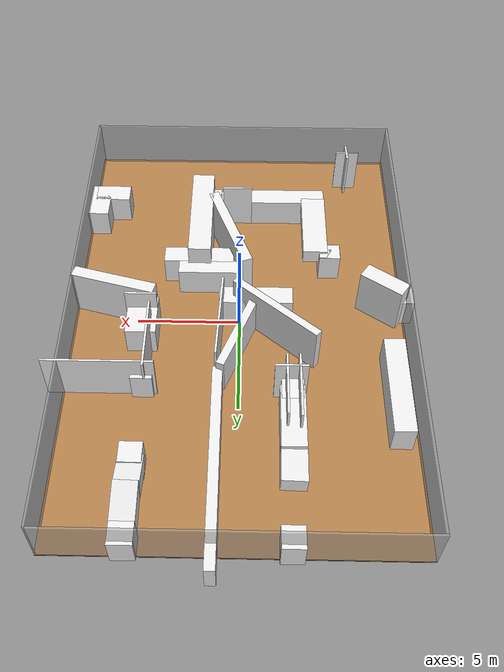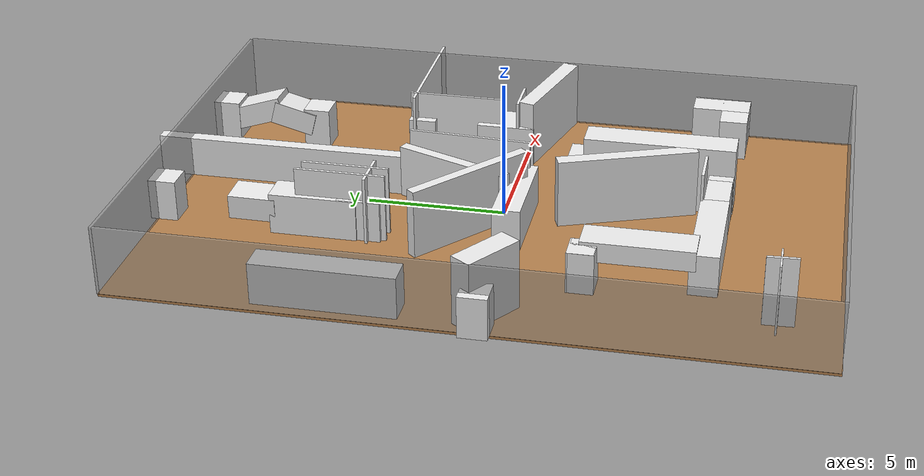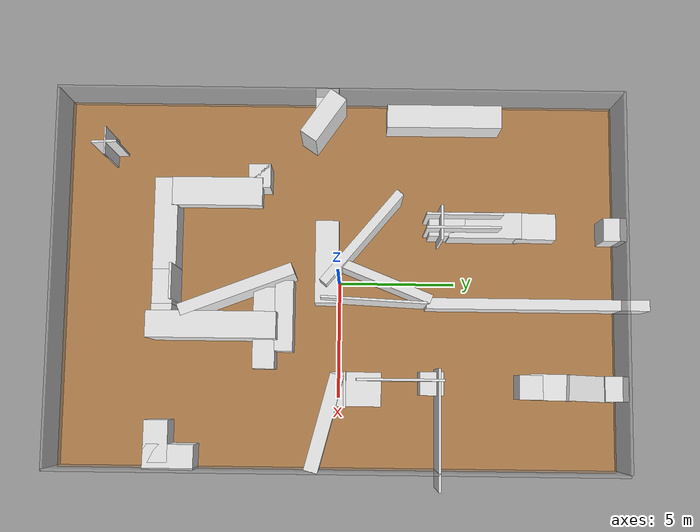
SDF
<sdf version="1.7">
 <world name="default">
  <light name="sun" type="directional">
   <pose>0 0 10 0 -0 0</pose>
   <diffuse>0.8 0.8 0.8 1</diffuse>
   <specular>0.2 0.2 0.2 1</specular>
   <attenuation>
    <range>1000</range>
    <constant>0.9</constant>
    <linear>0.01</linear>
    <quadratic>0.001</quadratic>
   </attenuation>
   <direction>-0.5 0.1 -0.9</direction>
   <spot><inner_angle>0</inner_angle><outer_angle>0</outer_angle><falloff>0</falloff></spot>
  </light>
  <physics name="default_physics" default="0" type="ode">
   <real_time_update_rate>1000</real_time_update_rate>
   <max_step_size>0.001</max_step_size>
   <real_time_factor>1</real_time_factor>
   <ode>
    <solver>
     <type>quick</type>
     <iters>150</iters>
     <precon_iters>0</precon_iters>
     <sor>1.4</sor>
     <use_dynamic_moi_rescaling>1</use_dynamic_moi_rescaling>
    </solver>
    <constraints>
     <cfm>1e-05</cfm>
     <erp>0.2</erp>
     <contact_max_correcting_vel>2000</contact_max_correcting_vel>
     <contact_surface_layer>0.01</contact_surface_layer>
    </constraints>
   </ode>
  </physics>
  <model name="box_1">
   <pose>0.05 -12.05 1.25 0 -0 0</pose>
   <static>1</static>
   <link name="link">
    <collision name="collision"><geometry><box><size>16.1 0.1 2.5</size></box></geometry></collision>
    <visual name="visual">
     <geometry><box><size>16.1 0.1 2.5</size></box></geometry>
     <material>
      <script><name>Gazebo/GreyTransparent</name><uri>file://media/materials/scripts/gazebo.material</uri></script>
     </material>
    </visual>
   </link>
  </model>
  <model name="box_2">
   <pose>8.06174 -0.026302 1.25 0 -0 0</pose>
   <static>1</static>
   <link name="link">
    <collision name="collision"><geometry><box><size>0.1 24.1 2.5</size></box></geometry></collision>
    <visual name="visual">
     <geometry><box><size>0.1 24.1 2.5</size></box></geometry>
     <material>
      <script><name>Gazebo/GreyTransparent</name><uri>file://media/materials/scripts/gazebo.material</uri></script>
     </material>
    </visual>
   </link>
  </model>
  <model name="box_3">
   <pose>-0.05 12.05 1.25 0 -0 0</pose>
   <static>1</static>
   <link name="link">
    <collision name="collision"><geometry><box><size>16.1 0.1 2.5</size></box></geometry></collision>
    <visual name="visual">
     <geometry><box><size>16.1 0.1 2.5</size></box></geometry>
     <material>
      <script><name>Gazebo/GreyTransparent</name><uri>file://media/materials/scripts/gazebo.material</uri></script>
     </material>
    </visual>
   </link>
  </model>
  <model name="box_4">
   <pose>-8.05 -0.05 1.25 0 -0 0</pose>
   <static>1</static>
   <link name="link">
    <collision name="collision"><geometry><box><size>0.1 24.1 2.5</size></box></geometry></collision>
    <visual name="visual">
     <geometry><box><size>0.1 24.1 2.5</size></box></geometry>
     <material>
      <script><name>Gazebo/GreyTransparent</name><uri>file://media/materials/scripts/gazebo.material</uri></script>
     </material>
    </visual>
   </link>
  </model>
  <model name="box_5">
   <pose>0.008855 -0.029843 -0.05 0 -0 0</pose>
   <static>1</static>
   <link name="link">
    <collision name="collision"><geometry><box><size>16.2 24.2 0.1</size></box></geometry></collision>
    <visual name="visual">
     <geometry><box><size>16.2 24.2 0.1</size></box></geometry>
     <material>
      <script><name>Gazebo/WoodFloor</name><uri>file://media/materials/scripts/gazebo.material</uri></script>
     </material>
    </visual>
   </link>
  </model>
  <gravity>0 0 -9.8066</gravity>
  <magnetic_field>6e-06 2.3e-05 -4.2e-05</magnetic_field>
  <atmosphere type="adiabatic"/>
  <scene><ambient>0.4 0.4 0.4 1</ambient><background>0.7 0.7 0.7 1</background><shadows>1</shadows></scene>
  <spherical_coordinates>
   <surface_model>EARTH_WGS84</surface_model>
   <latitude_deg>0</latitude_deg>
   <longitude_deg>0</longitude_deg>
   <elevation>0</elevation>
   <heading_deg>0</heading_deg>
  </spherical_coordinates>
  <model name="box_8_clone">
   <pose>6.02739 -0.558796 1.25 0 0 -0.258215</pose>
   <static>1</static>
   <link name="link">
    <collision name="collision"><geometry><box><size>4.10708 0.587966 2.5</size></box></geometry></collision>
    <visual name="visual">
     <geometry><box><size>4.10708 0.587966 2.5</size></box></geometry>
     <material>
      <script><name>Gazebo/White</name><uri>file://media/materials/scripts/gazebo.material</uri></script>
     </material>
    </visual>
   </link>
  </model>
  <model name="box_9_clone_clone_0">
   <pose>-2.3742 -7.50278 0.75 0 -0 0</pose>
   <static>1</static>
   <link name="link">
    <collision name="collision"><geometry><box><size>3.97916 1 1.5</size></box></geometry></collision>
    <visual name="visual">
     <geometry><box><size>3.97916 1 1.5</size></box></geometry>
     <material>
      <script><name>Gazebo/White</name><uri>file://media/materials/scripts/gazebo.material</uri></script>
     </material>
    </visual>
   </link>
  </model>
  <model name="box_9_clone_clone_1">
   <pose>0.352261 -7.55684 0.75 0 -0 0</pose>
   <static>1</static>
   <link name="link">
    <collision name="collision"><geometry><box><size>1.50562 0.874618 1.5</size></box></geometry></collision>
    <visual name="visual">
     <geometry><box><size>1.50562 0.874618 1.5</size></box></geometry>
     <material>
      <script><name>Gazebo/White</name><uri>file://media/materials/scripts/gazebo.material</uri></script>
     </material>
    </visual>
   </link>
  </model>
  <model name="box_9_clone_clone_2">
   <pose>-4.48641 -3.49037 0.75 0 -0 0</pose>
   <static>1</static>
   <link name="link">
    <collision name="collision"><geometry><box><size>1.032 0.920712 1.5</size></box></geometry></collision>
    <visual name="visual">
     <geometry><box><size>1.032 0.920712 1.5</size></box></geometry>
     <material>
      <script><name>Gazebo/White</name><uri>file://media/materials/scripts/gazebo.material</uri></script>
     </material>
    </visual>
   </link>
  </model>
  <model name="box_9_clone_clone_3">
   <pose>6.89538 -7.6391 0.75 0 0 -1.57247</pose>
   <static>1</static>
   <link name="link">
    <collision name="collision"><geometry><box><size>1.02796 1.76303 1.5</size></box></geometry></collision>
    <visual name="visual">
     <geometry><box><size>1.02796 1.76303 1.5</size></box></geometry>
     <material>
      <script><name>Gazebo/White</name><uri>file://media/materials/scripts/gazebo.material</uri></script>
     </material>
    </visual>
   </link>
  </model>
  <model name="box_8_clone_clone_13_clone_clone_clone_clone_0">
   <pose>0.009074 1.83398 0.706232 0 0 -1.95097</pose>
   <static>1</static>
   <link name="link">
    <collision name="collision"><geometry><box><size>4.43938 0.391369 2.5</size></box></geometry></collision>
    <visual name="visual">
     <geometry><box><size>4.43938 0.391369 2.5</size></box></geometry>
     <material>
      <script><name>Gazebo/White</name><uri>file://media/materials/scripts/gazebo.material</uri></script>
     </material>
    </visual>
   </link>
  </model>
  <model name="box_8_clone_clone_11_clone">
   <pose>0.547651 -4.29786 1.25 0 0 -2.77666</pose>
   <static>1</static>
   <link name="link">
    <collision name="collision"><geometry><box><size>0.506942 5.04986 2.5</size></box></geometry></collision>
    <visual name="visual">
     <geometry><box><size>0.506942 5.04986 2.5</size></box></geometry>
     <material>
      <script><name>Gazebo/White</name><uri>file://media/materials/scripts/gazebo.material</uri></script>
     </material>
    </visual>
   </link>
  </model>
  <model name="box_8_clone_clone_4_clone_2">
   <pose>-1.70706 0.920631 1.25 0 -0 2.44588</pose>
   <static>1</static>
   <link name="link">
    <collision name="collision"><geometry><box><size>5.00528 0.370167 2.5</size></box></geometry></collision>
    <visual name="visual">
     <geometry><box><size>5.00528 0.370167 2.5</size></box></geometry>
     <material>
      <script><name>Gazebo/White</name><uri>file://media/materials/scripts/gazebo.material</uri></script>
     </material>
    </visual>
   </link>
  </model>
  <model name="box_9_clone_clone_7_clone">
   <pose>-7.20708 4.47733 0.75 0 -0 0</pose>
   <static>1</static>
   <link name="link">
    <collision name="collision"><geometry><box><size>1 4.97616 1.5</size></box></geometry></collision>
    <visual name="visual">
     <geometry><box><size>1 4.97616 1.5</size></box></geometry>
     <material>
      <script><name>Gazebo/White</name><uri>file://media/materials/scripts/gazebo.material</uri></script>
     </material>
    </visual>
   </link>
  </model>
  <model name="box_9_clone_clone_7_clone_clone">
   <pose>-7.89766 -0.627489 0.75 0 -0 0</pose>
   <static>1</static>
   <link name="link">
    <collision name="collision"><geometry><box><size>1 1 1.5</size></box></geometry></collision>
    <visual name="visual">
     <geometry><box><size>1 1 1.5</size></box></geometry>
     <material>
      <script><name>Gazebo/White</name><uri>file://media/materials/scripts/gazebo.material</uri></script>
     </material>
    </visual>
   </link>
  </model>
  <model name="box_9_clone_clone_7_clone_clone_4">
   <pose>-4.4901 -3.52689 0.75 0 -0 0</pose>
   <static>1</static>
   <link name="link">
    <collision name="collision"><geometry><box><size>1.03791 0.895678 1.5</size></box></geometry></collision>
    <visual name="visual">
     <geometry><box><size>1.03791 0.895678 1.5</size></box></geometry>
     <material>
      <script><name>Gazebo/White</name><uri>file://media/materials/scripts/gazebo.material</uri></script>
     </material>
    </visual>
   </link>
  </model>
  <model name="box_9_clone_clone_5_clone_2_clone_0">
   <pose>4.46965 8.14489 0.75 0 -0 0</pose>
   <static>1</static>
   <link name="link">
    <collision name="collision"><geometry><box><size>1.02973 0.994 1.5</size></box></geometry></collision>
    <visual name="visual">
     <geometry><box><size>1.02973 0.994 1.5</size></box></geometry>
     <material>
      <script><name>Gazebo/White</name><uri>file://media/materials/scripts/gazebo.material</uri></script>
     </material>
    </visual>
   </link>
  </model>
  <model name="box_9_clone_clone_5_clone_2_clone_0_clone_0">
   <pose>7.54558 -7.09539 0.75 0 -0 3.12889</pose>
   <static>1</static>
   <link name="link">
    <collision name="collision"><geometry><box><size>1.05676 2.1313 1.5</size></box></geometry></collision>
    <visual name="visual">
     <geometry><box><size>1.05676 2.1313 1.5</size></box></geometry>
     <material>
      <script><name>Gazebo/White</name><uri>file://media/materials/scripts/gazebo.material</uri></script>
     </material>
    </visual>
   </link>
  </model>
  <model name="box_6_clone_clone_4_clone">
   <pose>4.49461 10.5396 1.13563 -0 -1.24728 1.53996</pose>
   <static>1</static>
   <link name="link">
    <collision name="collision"><geometry><box><size>0.85359 1.08009 2.15382</size></box></geometry></collision>
    <visual name="visual">
     <geometry><box><size>0.85359 1.08009 2.15382</size></box></geometry>
     <material>
      <script><name>Gazebo/White</name><uri>file://media/materials/scripts/gazebo.material</uri></script>
     </material>
    </visual>
   </link>
  </model>
  <model name="box_9_clone_clone_7_clone_clone_clone">
   <pose>-0.779636 -0.55103 0.75 0 -0 0</pose>
   <static>1</static>
   <link name="link">
    <collision name="collision"><geometry><box><size>3.55314 1 1.5</size></box></geometry></collision>
    <visual name="visual">
     <geometry><box><size>3.55314 1 1.5</size></box></geometry>
     <material>
      <script><name>Gazebo/White</name><uri>file://media/materials/scripts/gazebo.material</uri></script>
     </material>
    </visual>
   </link>
  </model>
  <model name="box_8_clone_clone_3_clone">
   <pose>6.25131 4.20674 1.25 0 -0 0</pose>
   <static>1</static>
   <link name="link">
    <collision name="collision"><geometry><box><size>5.04273 0.1 2.5</size></box></geometry></collision>
    <visual name="visual">
     <geometry><box><size>5.04273 0.1 2.5</size></box></geometry>
     <material>
      <script><name>Gazebo/White</name><uri>file://media/materials/scripts/gazebo.material</uri></script>
     </material>
    </visual>
   </link>
  </model>
  <model name="box_9_clone_clone_7_clone_0">
   <pose>0.952701 8.47024 0.75 0 -0 0</pose>
   <static>1</static>
   <link name="link">
    <collision name="collision"><geometry><box><size>0.463616 9.49899 1.5</size></box></geometry></collision>
    <visual name="visual">
     <geometry><box><size>0.463616 9.49899 1.5</size></box></geometry>
     <material>
      <script><name>Gazebo/White</name><uri>file://media/materials/scripts/gazebo.material</uri></script>
     </material>
    </visual>
   </link>
  </model>
  <model name="box_9_clone_clone_9_clone">
   <pose>-2.30467 11.7929 0.75 0 -0 0</pose>
   <static>1</static>
   <link name="link">
    <collision name="collision"><geometry><box><size>1 1 1.5</size></box></geometry></collision>
    <visual name="visual">
     <geometry><box><size>1 1 1.5</size></box></geometry>
     <material>
      <script><name>Gazebo/White</name><uri>file://media/materials/scripts/gazebo.material</uri></script>
     </material>
    </visual>
   </link>
  </model>
  <model name="box_6_clone_clone_3_clone_clone_clone">
   <pose>-2.74377 5.24994 1.25 0 -0 0</pose>
   <static>1</static>
   <link name="link">
    <collision name="collision"><geometry><box><size>0.1 3.23033 2.5</size></box></geometry></collision>
    <visual name="visual">
     <geometry><box><size>0.1 3.23033 2.5</size></box></geometry>
     <material>
      <script><name>Gazebo/White</name><uri>file://media/materials/scripts/gazebo.material</uri></script>
     </material>
    </visual>
   </link>
  </model>
  <model name="box_6_clone_clone_3_clone_clone_clone_clone">
   <pose>4.22525 2.59008 1.25 0 -0 0</pose>
   <static>1</static>
   <link name="link">
    <collision name="collision"><geometry><box><size>0.1 3.67789 2.5</size></box></geometry></collision>
    <visual name="visual">
     <geometry><box><size>0.1 3.67789 2.5</size></box></geometry>
     <material>
      <script><name>Gazebo/White</name><uri>file://media/materials/scripts/gazebo.material</uri></script>
     </material>
    </visual>
   </link>
  </model>
  <model name="box_6_clone_clone_3_clone_clone_clone_clone_0">
   <pose>2.02668 -5.31678 1.25 0 -0 0</pose>
   <static>1</static>
   <link name="link">
    <collision name="collision"><geometry><box><size>1.12246 5.42823 2.5</size></box></geometry></collision>
    <visual name="visual">
     <geometry><box><size>1.12246 5.42823 2.5</size></box></geometry>
     <material>
      <script><name>Gazebo/White</name><uri>file://media/materials/scripts/gazebo.material</uri></script>
     </material>
    </visual>
   </link>
  </model>
  <model name="box_6_clone_clone_3_clone_clone_clone_clone_0_clone">
   <pose>-3.77157 -5.29976 1.25021 3.14159 1.56727 3.14159</pose>
   <static>1</static>
   <link name="link">
    <collision name="collision"><geometry><box><size>0.724362 3.8791 1.22037</size></box></geometry></collision>
    <visual name="visual">
     <geometry><box><size>0.724362 3.8791 1.22037</size></box></geometry>
     <material>
      <script><name>Gazebo/White</name><uri>file://media/materials/scripts/gazebo.material</uri></script>
     </material>
    </visual>
   </link>
  </model>
  <model name="box_9_clone_clone_5_clone_2_clone_0_clone_clone">
   <pose>1.55561 -2.34786 0.75 0 -0 0</pose>
   <static>1</static>
   <link name="link">
    <collision name="collision"><geometry><box><size>3.00623 0.780779 1.5</size></box></geometry></collision>
    <visual name="visual">
     <geometry><box><size>3.00623 0.780779 1.5</size></box></geometry>
     <material>
      <script><name>Gazebo/White</name><uri>file://media/materials/scripts/gazebo.material</uri></script>
     </material>
    </visual>
   </link>
  </model>
  <model name="box_8_clone_clone">
   <pose>4.67077 0.276191 1.25 0 -0 0</pose>
   <static>1</static>
   <link name="link">
    <collision name="collision"><geometry><box><size>1.5 0.1 2.5</size></box></geometry></collision>
    <visual name="visual">
     <geometry><box><size>1.5 0.1 2.5</size></box></geometry>
     <material>
      <script><name>Gazebo/White</name><uri>file://media/materials/scripts/gazebo.material</uri></script>
     </material>
    </visual>
   </link>
  </model>
  <model name="box_9_clone_clone_7_clone_clone_0">
   <pose>-2.43804 4.59154 0.75 0 -0 0</pose>
   <static>1</static>
   <link name="link">
    <collision name="collision"><geometry><box><size>1 1.54675 1.5</size></box></geometry></collision>
    <visual name="visual">
     <geometry><box><size>1 1.54675 1.5</size></box></geometry>
     <material>
      <script><name>Gazebo/White</name><uri>file://media/materials/scripts/gazebo.material</uri></script>
     </material>
    </visual>
   </link>
  </model>
  <model name="box_9_clone_clone_5_clone_2_clone_0_clone_0_clone">
   <pose>1.53706 -7.56875 0.75 0 -0 0</pose>
   <static>1</static>
   <link name="link">
    <collision name="collision"><geometry><box><size>1 0.874618 1.5</size></box></geometry></collision>
    <visual name="visual">
     <geometry><box><size>1 0.874618 1.5</size></box></geometry>
     <material>
      <script><name>Gazebo/White</name><uri>file://media/materials/scripts/gazebo.material</uri></script>
     </material>
    </visual>
   </link>
  </model>
  <model name="box_9_clone_clone_5_clone_2_clone_clone_clone_0_clone">
   <pose>4.3636 3.94247 0.75 0 -0 0</pose>
   <static>1</static>
   <link name="link">
    <collision name="collision"><geometry><box><size>0.996807 1.00784 1.5</size></box></geometry></collision>
    <visual name="visual">
     <geometry><box><size>0.996807 1.00784 1.5</size></box></geometry>
     <material>
      <script><name>Gazebo/White</name><uri>file://media/materials/scripts/gazebo.material</uri></script>
     </material>
    </visual>
   </link>
  </model>
  <model name="box_9_clone_clone_5_clone_2_clone_clone_clone_0_clone_clone">
   <pose>4.63539 0.739081 0.75 0 -0 0</pose>
   <static>1</static>
   <link name="link">
    <collision name="collision"><geometry><box><size>1.44369 2.14316 1.5</size></box></geometry></collision>
    <visual name="visual">
     <geometry><box><size>1.44369 2.14316 1.5</size></box></geometry>
     <material>
      <script><name>Gazebo/White</name><uri>file://media/materials/scripts/gazebo.material</uri></script>
     </material>
    </visual>
   </link>
  </model>
  <model name="box_6_clone_clone_3_clone_clone_clone_clone_1">
   <pose>-2.16782 5.21001 1.25 0 -0 0.001144</pose>
   <static>1</static>
   <link name="link">
    <collision name="collision"><geometry><box><size>0.1 3.12165 2.5</size></box></geometry></collision>
    <visual name="visual">
     <geometry><box><size>0.1 3.12165 2.5</size></box></geometry>
     <material>
      <script><name>Gazebo/White</name><uri>file://media/materials/scripts/gazebo.material</uri></script>
     </material>
    </visual>
   </link>
  </model>
  <model name="box_9_clone_clone_8_clone_0_clone">
   <pose>-2.43485 6.21978 0.75 0 -0 0</pose>
   <static>1</static>
   <link name="link">
    <collision name="collision"><geometry><box><size>1.12201 3.13013 1.5</size></box></geometry></collision>
    <visual name="visual">
     <geometry><box><size>1.12201 3.13013 1.5</size></box></geometry>
     <material>
      <script><name>Gazebo/White</name><uri>file://media/materials/scripts/gazebo.material</uri></script>
     </material>
    </visual>
   </link>
  </model>
  <model name="box_8_clone_clone_3_clone_clone_clone">
   <pose>-6.91639 -0.763602 1.25 0 0 -0.605945</pose>
   <static>1</static>
   <link name="link">
    <collision name="collision"><geometry><box><size>2.23578 0.820117 2.5</size></box></geometry></collision>
    <visual name="visual">
     <geometry><box><size>2.23578 0.820117 2.5</size></box></geometry>
     <material>
      <script><name>Gazebo/White</name><uri>file://media/materials/scripts/gazebo.material</uri></script>
     </material>
    </visual>
   </link>
  </model>
  <audio><device>default</device></audio>
  <model name="box_6_clone_clone_4_clone_clone">
   <pose>4.46275 9.05576 1.09167 0.017343 -1.31613 -1.60232</pose>
   <static>1</static>
   <link name="link">
    <collision name="collision"><geometry><box><size>0.871963 1.10854 1.66556</size></box></geometry></collision>
    <visual name="visual">
     <geometry><box><size>0.871963 1.10854 1.66556</size></box></geometry>
     <material>
      <script><name>Gazebo/White</name><uri>file://media/materials/scripts/gazebo.material</uri></script>
     </material>
    </visual>
   </link>
  </model>
  <model name="box_9_clone_clone_5_clone_2_clone_0_clone_0_clone_0">
   <pose>2.08102 -3.18404 0.75 0 -0 0</pose>
   <static>1</static>
   <link name="link">
    <collision name="collision"><geometry><box><size>3.46984 0.937604 1.5</size></box></geometry></collision>
    <visual name="visual">
     <geometry><box><size>3.46984 0.937604 1.5</size></box></geometry>
     <material>
      <script><name>Gazebo/White</name><uri>file://media/materials/scripts/gazebo.material</uri></script>
     </material>
    </visual>
   </link>
  </model>
  <model name="box_8_clone_clone_11_clone_clone_0">
   <pose>-5.67141 -10.0374 1.25 0 -0 1.62008</pose>
   <static>1</static>
   <link name="link">
    <collision name="collision"><geometry><box><size>1.06277 0.1 2.5</size></box></geometry></collision>
    <visual name="visual">
     <geometry><box><size>1.06277 0.1 2.5</size></box></geometry>
     <material>
      <script><name>Gazebo/White</name><uri>file://media/materials/scripts/gazebo.material</uri></script>
     </material>
    </visual>
   </link>
  </model>
  <model name="box_8_clone_clone_11_clone_clone_1">
   <pose>-5.71384 -9.99262 1.25 0 -0 0</pose>
   <static>1</static>
   <link name="link">
    <collision name="collision"><geometry><box><size>1.19714 0.0589998 2.5</size></box></geometry></collision>
    <visual name="visual">
     <geometry><box><size>1.19714 0.0589998 2.5</size></box></geometry>
     <material>
      <script><name>Gazebo/White</name><uri>file://media/materials/scripts/gazebo.material</uri></script>
     </material>
    </visual>
   </link>
  </model>
  <model name="box_8_clone_clone_11_clone_clone_1_clone">
   <pose>0.220749 -7.0443 1.25 0 -0 0</pose>
   <static>1</static>
   <link name="link">
    <collision name="collision"><geometry><box><size>1.5 0.1 2.5</size></box></geometry></collision>
    <visual name="visual">
     <geometry><box><size>1.5 0.1 2.5</size></box></geometry>
     <material>
      <script><name>Gazebo/White</name><uri>file://media/materials/scripts/gazebo.material</uri></script>
     </material>
    </visual>
   </link>
  </model>
  <model name="box_8_clone_clone_4_clone_2_clone">
   <pose>-2.37022 4.28765 1.25 0 -0 0</pose>
   <static>1</static>
   <link name="link">
    <collision name="collision"><geometry><box><size>1.5 0.1 2.5</size></box></geometry></collision>
    <visual name="visual">
     <geometry><box><size>1.5 0.1 2.5</size></box></geometry>
     <material>
      <script><name>Gazebo/White</name><uri>file://media/materials/scripts/gazebo.material</uri></script>
     </material>
    </visual>
   </link>
  </model>
  <model name="box_8_clone_clone_4_clone_2_clone_clone">
   <pose>0.922424 1.45112 1.25 0 0 -1.61998</pose>
   <static>1</static>
   <link name="link">
    <collision name="collision"><geometry><box><size>4.46328 0.1 2.5</size></box></geometry></collision>
    <visual name="visual">
     <geometry><box><size>4.46328 0.1 2.5</size></box></geometry>
     <material>
      <script><name>Gazebo/White</name><uri>file://media/materials/scripts/gazebo.material</uri></script>
     </material>
    </visual>
   </link>
  </model>
  <model name="box_9_clone_clone_5_clone_2_clone_0_clone">
   <pose>4.49752 11.7568 0.75 0 -0 0</pose>
   <static>1</static>
   <link name="link">
    <collision name="collision"><geometry><box><size>1.0548 1.00211 1.5</size></box></geometry></collision>
    <visual name="visual">
     <geometry><box><size>1.0548 1.00211 1.5</size></box></geometry>
     <material>
      <script><name>Gazebo/White</name><uri>file://media/materials/scripts/gazebo.material</uri></script>
     </material>
    </visual>
   </link>
  </model>
  <model name="box_8_clone_clone_3_clone_clone_clone_0">
   <pose>-2.41912 8.42573 0.872038 -1.57067 -0.035681 -0.014782</pose>
   <static>1</static>
   <link name="link">
    <collision name="collision"><geometry><box><size>1.1445 0.870245 1.70545</size></box></geometry></collision>
    <visual name="visual">
     <geometry><box><size>1.1445 0.870245 1.70545</size></box></geometry>
     <material>
      <script><name>Gazebo/White</name><uri>file://media/materials/scripts/gazebo.material</uri></script>
     </material>
    </visual>
   </link>
  </model>
 </world>
</sdf>
